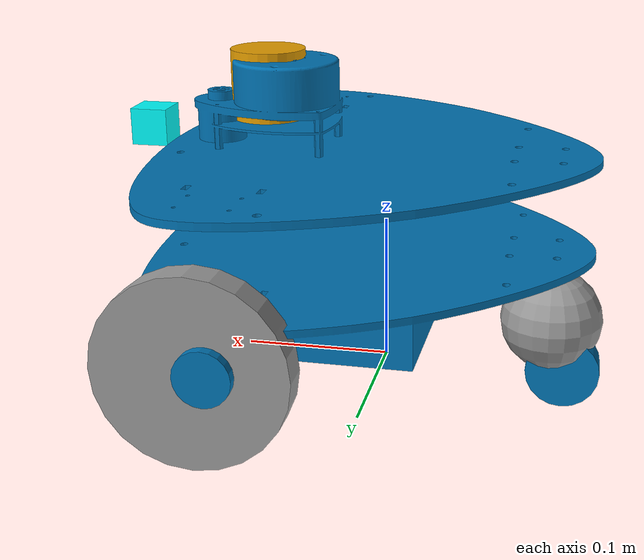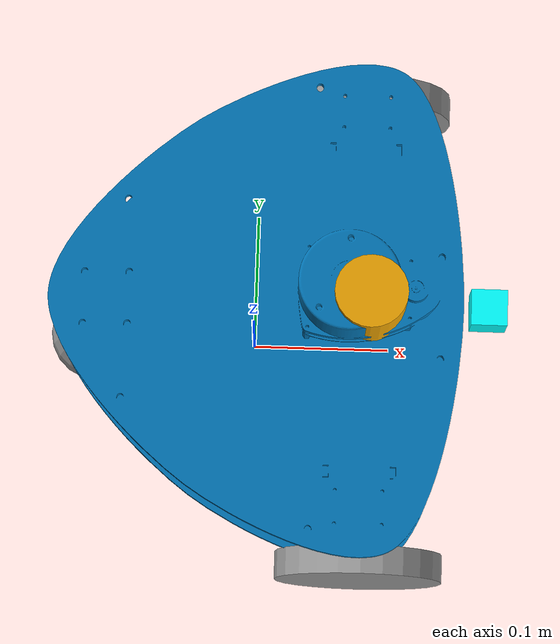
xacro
<?xml version="1.0"?>

<robot xmlns:xacro="http://www.ros.org/wiki/xacro" name="marrtinox">
    <xacro:property name="pi" value="3.1416"/>
    <xacro:property name="b_height" value="0.18"/>
    <xacro:property name="b_width" value="0.30"/>
    <xacro:property name="b_length" value="0.30"/>
    <xacro:property name="b_mass" value="3"/>

    <xacro:property name="w_radius" value="0.06"/>
    <xacro:property name="w_height" value="0.02"/>
    <xacro:property name="w_height_offset" value="0.01"/>
    <xacro:property name="w_width_offset" value="0.01"/>
    <xacro:property name="w_length_offset" value="-0.07"/>
    <xacro:property name="w_mass" value="0.25"/>

    <xacro:property name="c_offset" value="0.035"/>
    <xacro:property name="c_radius" value="${(w_radius+w_height_offset)/2}"/>
    <xacro:property name="c_mass" value="0.15"/>

    <xacro:macro name="cylinder_inertia" params="m r h">
        <inertial>
            <mass value="${m}"/>
            <inertia  ixx="${m*(3*r*r+h*h)/12}" ixy = "0" ixz = "0"
                        iyy="${m*(3*r*r+h*h)/12}" iyz = "0"
                        izz="${m*r*r/2}" />
        </inertial>
    </xacro:macro>

    <xacro:macro name="box_inertia" params="m x y z">
        <inertial>
            <mass value="${m}"/>
            <inertia  ixx="${m*(y*y+z*z)/12}" ixy = "0" ixz = "0"
                        iyy="${m*(x*x+z*z)/12}" iyz = "0"
                        izz="${m*(x*x+z*z)/12}" />
        </inertial>
    </xacro:macro>

    <xacro:macro name="sphere_inertia" params="m r">
        <inertial>
            <mass value="${m}"/>
            <inertia  ixx="${2*m*r*r/5}" ixy = "0" ixz = "0"
                        iyy="${2*m*r*r/5}" iyz = "0"
                        izz="${2*m*r*r/5}" />
        </inertial>
    </xacro:macro>

    <xacro:include filename="marrtinox/laser.urdf.xacro"/>
    <xacro:include filename="marrtinox/camera3.urdf.xacro"/>
       <!-- Import Rviz colors -->
    <xacro:include filename="marrtinox//material.xacro" />

    <link name="base_footprint"/>

    <link name="base_link">
        <visual>
            <origin rpy="0 0 3.1415" xyz="0 -0.08 -0.18"/>
            <geometry>
                <mesh filename="package://marrtinox_description/urdf/marrtinox/base.dae" scale="0.001 0.001 0.001" />

            </geometry>

        </visual>
        <collision>
            <geometry>
                <box size="${b_length} ${b_width} ${b_height}"/>
            </geometry>
        </collision>
        <xacro:box_inertia m="${b_mass}" x="${b_length}" y="${b_width}" z="${b_height}"/>
    </link>

    <link name="left_wheel">
        <visual>
            <geometry>
                <cylinder length="${w_height}" radius="${w_radius}"/>
            </geometry>
        </visual>
        <collision>
            <geometry>
                <cylinder length="${w_height}" radius="${w_radius}"/>
            </geometry>
        </collision>
        <xacro:cylinder_inertia m="${w_mass}" r="${w_radius}" h="${w_height}"/>
    </link>

    <link name="right_wheel">
        <visual>
            <geometry>
                <cylinder length="${w_height}" radius="${w_radius}"/>
            </geometry>
        </visual>
        <collision>
            <geometry>
                <cylinder length="${w_height}" radius="${w_radius}"/>
            </geometry>
        </collision>
        <xacro:cylinder_inertia m="${w_mass}" r="${w_radius}" h="${w_height}"/>
    </link>

    <link name="caster_wheel">
        <visual>
            <geometry>
                <sphere radius="${c_radius}"/>
            </geometry>
        </visual>
        <collision>
            <geometry>
                <sphere radius="${c_radius}"/>
            </geometry>
        </collision>
        <xacro:sphere_inertia m="${c_mass}" r="${c_radius}"/>
    </link>

    <joint name="base_footprint_to_base_link" type="fixed">
        <parent link="base_footprint"/>
        <child link="base_link"/>
        <origin xyz="0 0 ${w_radius+w_height_offset+b_height/2}"/>
    </joint>

    <joint name="base_link_to_left_wheel" type="continuous">
        <parent link="base_link"/>
        <child link="left_wheel"/>
        <axis xyz="0 0 1"/>
        <origin xyz="${b_length/2+w_length_offset} ${+b_width/2+w_width_offset+w_height/2} ${-b_height/2-w_height_offset}" rpy="${-pi/2} 0 0"/>
    </joint>

    <joint name="base_link_to_right_wheel" type="continuous">
        <parent link="base_link"/>
        <child link="right_wheel"/>
        <axis xyz="0 0 -1"/>
        <origin xyz="${b_length/2+w_length_offset} ${-b_width/2-w_width_offset-w_height/2} ${-b_height/2-w_height_offset}" rpy="${pi/2} 0 0"/>
    </joint>

    <joint name="base_link_to_caster_wheel" type="fixed">
        <parent link="base_link"/>
        <child link="caster_wheel"/>
        <origin xyz="${-b_length/2+c_offset} 0 ${-c_radius-b_height/2}"/>
    </joint>

    <gazebo>
        <plugin name="gazebo_ros_control" filename="libgazebo_ros_control.so">
        </plugin>
    </gazebo>

    <gazebo reference="left_wheel">
        <mu1 value="200.0"/>
        <mu2 value="100.0"/>
        <kp value="10000000.0" />
        <kd value="1.0" />
        <material>Gazebo/Grey</material>
    </gazebo>
    <gazebo reference="right_wheel">
        <mu1 value="200.0"/>
        <mu2 value="100.0"/>
        <kp value="10000000.0" />
        <kd value="1.0" />
        <material>Gazebo/Grey</material>
    </gazebo>
    <gazebo reference="caster_wheel">
      <mu1 value="0.0"/>
      <mu2 value="0.0"/>
      <material>Gazebo/Grey</material>
    </gazebo>

    <transmission name="left_wheel_transmission">
        <type>transmission_interface/SimpleTransmission</type>
        <actuator name="left_motor">
            <mechanicalReduction>1</mechanicalReduction>
        </actuator>
        <joint name="base_link_to_left_wheel">
            <hardwareInterface>hardware_interface/VelocityJointInterface</hardwareInterface>
        </joint>
    </transmission>

    <transmission name="right_wheel_transmission">
        <type>transmission_interface/SimpleTransmission</type>
        <actuator name="right_motor">
            <mechanicalReduction>1</mechanicalReduction>
        </actuator>
        <joint name="base_link_to_right_wheel">
            <hardwareInterface>hardware_interface/VelocityJointInterface</hardwareInterface>
        </joint>
    </transmission>

</robot>

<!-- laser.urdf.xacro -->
<robot xmlns:xacro="http://www.ros.org/wiki/xacro" name="laser">

    <xacro:property name="l_height" value="0.05"/>
    <xacro:property name="l_radius" value="0.025"/>
    <xacro:property name="l_mass" value="0.025"/>

    <link name="laser">
        <visual>
            <geometry>
                <cylinder length="${l_height}" radius="${l_radius}"/>
            </geometry>
        </visual>
        <collision>
            <geometry>
                <cylinder length="${l_height}" radius="${l_radius}"/>
            </geometry>
        </collision>
        <xacro:cylinder_inertia m="${l_mass}" r="${l_radius}" h="${l_height}"/>
    </link>

    <joint name="base_link_to_laser" type="fixed">
        <parent link="base_link"/>
        <child link="laser"/>
        <axis xyz="0 0 1"/>
        <origin xyz="0.08 0 0.03" rpy="0 0 3.146"/>
    </joint>

    <gazebo reference="laser">
        <sensor type="gpu_ray" name="head_rplidar_sensor">
            <pose>0 0 0 0 0 3.1416</pose>
            <visualize>false</visualize>
            <update_rate>50</update_rate>
            <ray>
            <scan>
                <horizontal>
                <samples>720</samples>
                <resolution>1</resolution>
                <min_angle>-3.14159265</min_angle>
                <max_angle>3.14159265</max_angle>
                </horizontal>
            </scan>
            <range>
                <min>0.1</min>
                <max>12.0</max>
                <resolution>0.01</resolution>
            </range>
            <noise>
                <type>gaussian</type>
                <mean>0.0</mean>
                <stddev>0.01</stddev>
            </noise>
            </ray>
            <plugin name="gazebo_ros_head_rplidar_controller" filename="libgazebo_ros_gpu_laser.so">
            <topicName>scan</topicName>
            <frameName>laser</frameName>
            </plugin>
        </sensor>
    </gazebo>

</robot>

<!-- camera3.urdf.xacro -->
<robot xmlns:xacro="http://www.ros.org/wiki/xacro" name="camera">
    <!-- upside down camera -->
    <xacro:property name="cam_side" value="0.025"/>
    <xacro:property name="cam_mass" value="0.025"/>
    <xacro:property name="cam_v_offset" value="0.03"/>

    <link name="camera">
        <visual>
            <material name="Cyan">
                <color rgba="0 1.0 1.0 1.0"/>
            </material>
            <geometry>
                <box size="${cam_side} ${cam_side} ${cam_side}"/>
            </geometry>
        </visual>
        <collision>
            <geometry>
                <box size="${cam_side} ${cam_side} ${cam_side}"/>
            </geometry>
        </collision>
        <xacro:box_inertia m="${cam_mass}" x="${cam_side}" y="${cam_side}" z="${cam_side}"/>
    </link>

    <joint name="base_link_to_camera" type="fixed">
      <parent link="base_link"/>
      <child link="camera"/>
      <axis xyz="1 0 0"/>
      <origin xyz="${b_length/2 + cam_side/2} 0 0" rpy="${pi/2} 0 ${pi/2}"/>
    </joint>

    <link name="gazebo_camera"/>

    <joint name="base_link_to_gazebo_camera" type="fixed">
      <parent link="base_link"/>
      <child link="gazebo_camera"/>
      <axis xyz="1 0 0"/>
      <origin xyz="${b_length/2 + cam_side/2} 0 ${cam_v_offset}" rpy="${pi} 0 0"/>
    </joint>

    <gazebo reference="gazebo_camera">
        <sensor type="camera" name="camera1">
          <pose>0 0 0 0 0 0</pose>
          <update_rate>15.0</update_rate>
          <camera name="head">
            <horizontal_fov>1.3962634</horizontal_fov>
            <image>
              <width>640</width>
              <height>480</height>
              <format>L8</format>
            </image>
            <clip>
              <near>0.02</near>
              <far>300</far>
            </clip>
            <noise>
              <type>gaussian</type>
              <mean>0.0</mean>
              <stddev>0.007</stddev>
            </noise>
          </camera>
          <plugin name="camera_controller" filename="libgazebo_ros_camera.so">
            <alwaysOn>true</alwaysOn>
            <updateRate>0.0</updateRate>
            <cameraName>virtual_camera</cameraName>
            <imageTopicName>image_proc</imageTopicName>
            <cameraInfoTopicName>camera_info</cameraInfoTopicName>
            <frameName>camera</frameName>
            <hackBaseline>0.07</hackBaseline>
            <distortionK1>0.0</distortionK1>
            <distortionK2>0.0</distortionK2>
            <distortionK3>0.0</distortionK3>
            <distortionT1>0.0</distortionT1>
            <distortionT2>0.0</distortionT2>
          </plugin>
        </sensor>
    </gazebo>

</robot>
